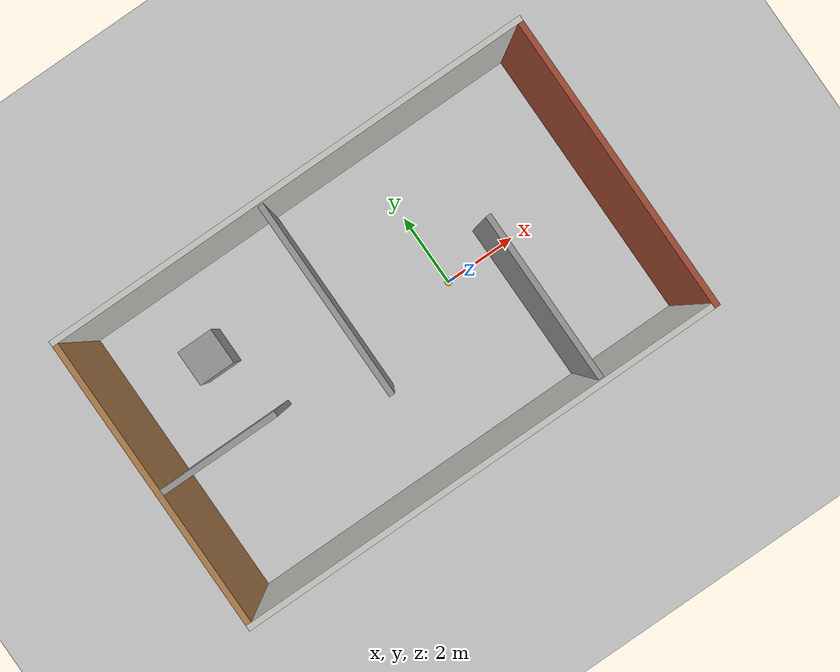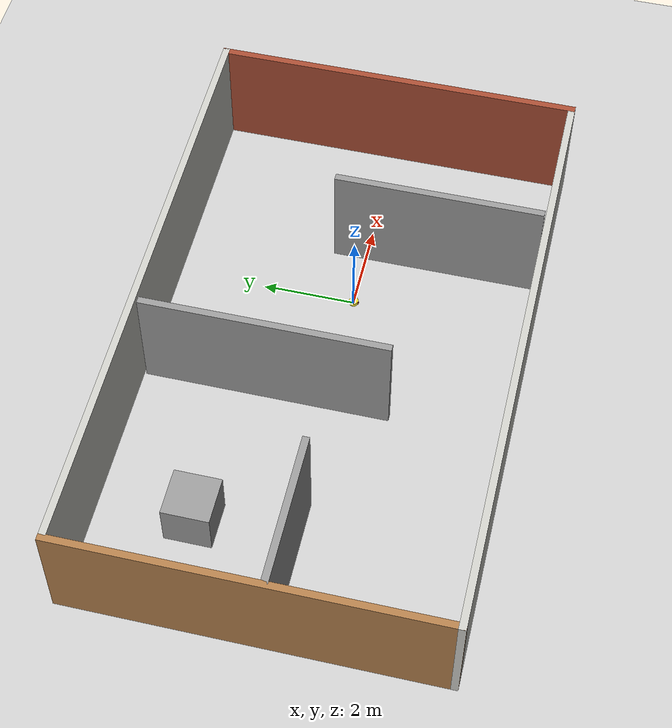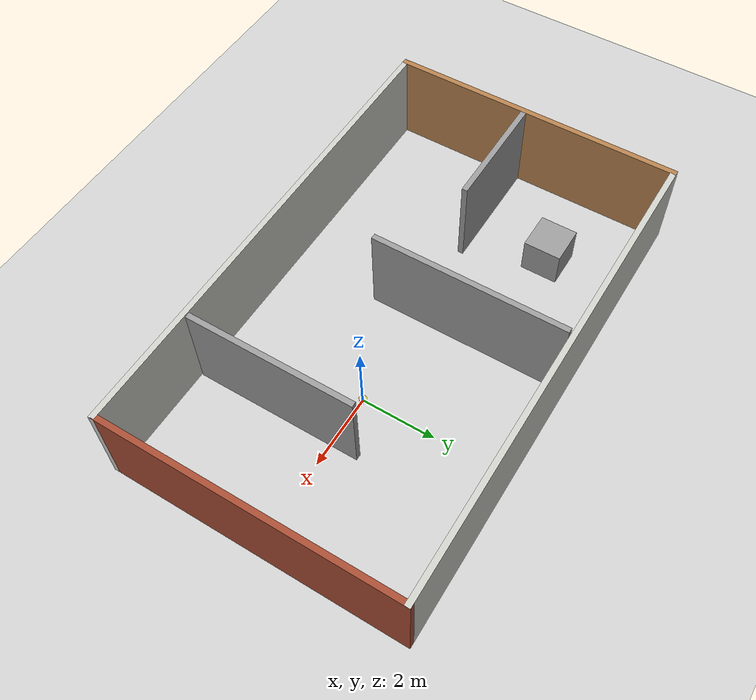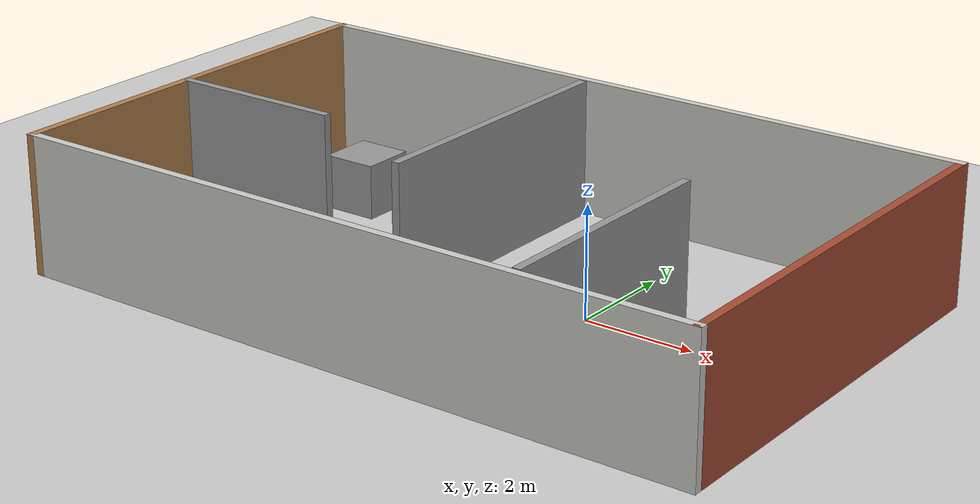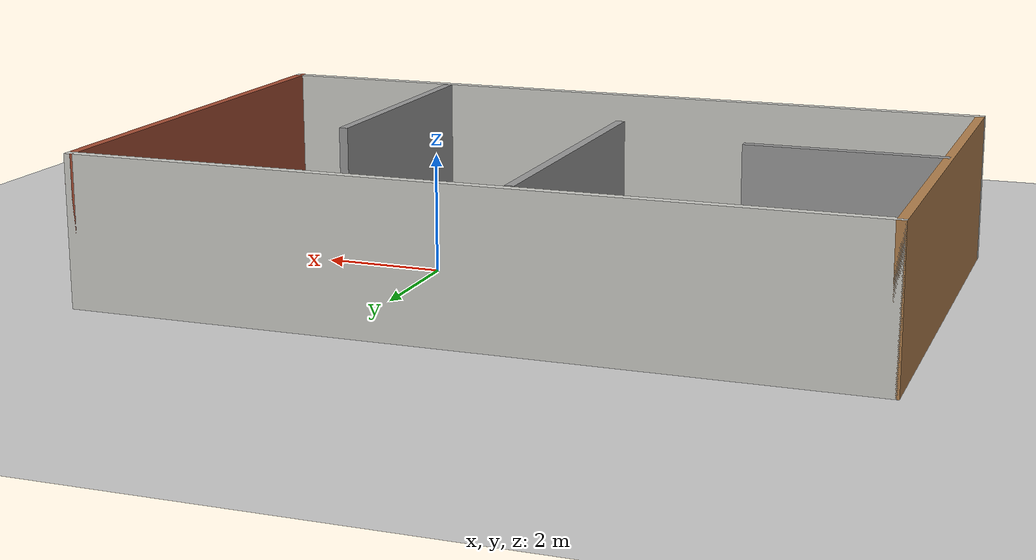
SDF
<sdf version="1.6">
 <world name="default">
  <light name="sun" type="directional">
   <pose>0 0 10 0 -0 0</pose>
   <diffuse>0.8 0.8 0.8 1</diffuse>
   <specular>0.2 0.2 0.2 1</specular>
   <attenuation>
    <range>1000</range>
    <constant>0.9</constant>
    <linear>0.01</linear>
    <quadratic>0.001</quadratic>
   </attenuation>
   <direction>-0.5 0.1 -0.9</direction>
   <spot><inner_angle>0</inner_angle><outer_angle>0</outer_angle><falloff>0</falloff></spot>
  </light>
  <model name="ground_plane">
   <static>1</static>
   <link name="link">
    <collision name="collision">
     <geometry><plane><normal>0 0 1</normal><size>100 100</size></plane></geometry>
     <surface>
      <contact><collide_bitmask>65535</collide_bitmask></contact>
      <friction><ode><mu>100</mu><mu2>50</mu2></ode></friction>
     </surface>
    </collision>
    <visual name="visual">
     <cast_shadows>0</cast_shadows>
     <geometry><plane><normal>0 0 1</normal><size>100 100</size></plane></geometry>
     <material>
      <script><uri>file://media/materials/scripts/gazebo.material</uri><name>Gazebo/Grey</name></script>
     </material>
    </visual>
   </link>
  </model>
  <gravity>0 0 -9.8</gravity>
  <magnetic_field>6e-06 2.3e-05 -4.2e-05</magnetic_field>
  <atmosphere type="adiabatic"/>
  <physics name="default_physics" default="0" type="ode">
   <max_step_size>0.001</max_step_size>
   <real_time_factor>1</real_time_factor>
   <real_time_update_rate>1000</real_time_update_rate>
  </physics>
  <scene><ambient>0.4 0.4 0.4 1</ambient><background>0.7 0.7 0.7 1</background><shadows>1</shadows></scene>
  <spherical_coordinates>
   <surface_model>EARTH_WGS84</surface_model>
   <latitude_deg>0</latitude_deg>
   <longitude_deg>0</longitude_deg>
   <elevation>0</elevation>
   <heading_deg>0</heading_deg>
  </spherical_coordinates>
  <model name="box_house">
   <pose>-1.97643 0.05996 0 0 -0 0</pose>
   <link name="Wall_1">
    <collision name="Wall_1_Collision">
     <geometry><box><size>13 0.15 2.5</size></box></geometry>
     <pose>0 0 1.25 0 -0 0</pose>
    </collision>
    <visual name="Wall_1_Visual">
     <pose>0 0 1.25 0 -0 0</pose>
     <geometry><box><size>13 0.15 2.5</size></box></geometry>
     <material>
      <script><uri>file://media/materials/scripts/gazebo.material</uri><name>Gazebo/CeilingTiled</name></script>
      <ambient>1 1 1 1</ambient>
     </material>
     <meta><layer>0</layer></meta>
    </visual>
    <pose>0 3.925 0 0 -0 0</pose>
   </link>
   <link name="Wall_2">
    <collision name="Wall_2_Collision">
     <geometry><box><size>8 0.15 2.5</size></box></geometry>
     <pose>0 0 1.25 0 -0 0</pose>
    </collision>
    <visual name="Wall_2_Visual">
     <pose>0 0 1.25 0 -0 0</pose>
     <geometry><box><size>8 0.15 2.5</size></box></geometry>
     <material>
      <script><uri>file://media/materials/scripts/gazebo.material</uri><name>Gazebo/Bricks</name></script>
      <ambient>1 1 1 1</ambient>
     </material>
     <meta><layer>0</layer></meta>
    </visual>
    <pose>6.425 -0 0 0 -0 -1.5708</pose>
   </link>
   <link name="Wall_3">
    <collision name="Wall_3_Collision">
     <geometry><box><size>13 0.15 2.5</size></box></geometry>
     <pose>0 0 1.25 0 -0 0</pose>
    </collision>
    <visual name="Wall_3_Visual">
     <pose>0 0 1.25 0 -0 0</pose>
     <geometry><box><size>13 0.15 2.5</size></box></geometry>
     <material>
      <script><uri>file://media/materials/scripts/gazebo.material</uri><name>Gazebo/CeilingTiled</name></script>
      <ambient>1 1 1 1</ambient>
     </material>
     <meta><layer>0</layer></meta>
    </visual>
    <pose>0 -3.925 0 0 -0 3.14159</pose>
   </link>
   <link name="Wall_4">
    <collision name="Wall_4_Collision">
     <geometry><box><size>8 0.15 2.5</size></box></geometry>
     <pose>0 0 1.25 0 -0 0</pose>
    </collision>
    <visual name="Wall_4_Visual">
     <pose>0 0 1.25 0 -0 0</pose>
     <geometry><box><size>8 0.15 2.5</size></box></geometry>
     <material>
      <script><uri>file://media/materials/scripts/gazebo.material</uri><name>Gazebo/Wood</name></script>
      <ambient>1 1 1 1</ambient>
     </material>
     <meta><layer>0</layer></meta>
    </visual>
    <pose>-6.425 -0 0 0 -0 1.5708</pose>
   </link>
   <static>1</static>
  </model>
  <audio><device>default</device></audio>
  <model name="mycar">
   <link name="base_footprint">
    <inertial>
     <pose>0.00127 0 0.093611 0 -0 0</pose>
     <mass>0.63</mass>
     <inertia>
      <ixx>0.00557395</ixx>
      <ixy>0</ixy>
      <ixz>-1.11111e-05</ixz>
      <iyy>0.00563694</iyy>
      <iyz>0</iyz>
      <izz>0.00261003</izz>
     </inertia>
    </inertial>
    <collision name="base_footprint_fixed_joint_lump__base_link_collision">
     <pose>0 0 0.055 0 -0 0</pose>
     <geometry><cylinder><length>0.08</length><radius>0.1</radius></cylinder></geometry>
    </collision>
    <collision name="base_footprint_fixed_joint_lump__camera_collision_1">
     <pose>0.08 0 0.1075 0 -0 0</pose>
     <geometry><box><size>0.01 0.025 0.025</size></box></geometry>
    </collision>
    <collision name="base_footprint_fixed_joint_lump__support_collision_2">
     <pose>0 0 0.17 0 -0 0</pose>
     <geometry><cylinder><length>0.15</length><radius>0.01</radius></cylinder></geometry>
    </collision>
    <collision name="base_footprint_fixed_joint_lump__laser_collision_3">
     <pose>0 0 0.27 0 -0 0</pose>
     <geometry><cylinder><length>0.05</length><radius>0.03</radius></cylinder></geometry>
    </collision>
    <visual name="base_footprint_visual"><geometry><sphere><radius>0.001</radius></sphere></geometry></visual>
    <visual name="base_footprint_fixed_joint_lump__base_link_visual_1">
     <pose>0 0 0.055 0 -0 0</pose>
     <geometry><cylinder><length>0.08</length><radius>0.1</radius></cylinder></geometry>
     <material>
      <script><name>Gazebo/Yellow</name><uri>file://media/materials/scripts/gazebo.material</uri></script>
     </material>
    </visual>
    <visual name="base_footprint_fixed_joint_lump__camera_visual_2">
     <pose>0.08 0 0.1075 0 -0 0</pose>
     <geometry><box><size>0.01 0.025 0.025</size></box></geometry>
     <material>
      <script><name>Gazebo/Blue</name><uri>file://media/materials/scripts/gazebo.material</uri></script>
     </material>
    </visual>
    <visual name="base_footprint_fixed_joint_lump__support_visual_3">
     <pose>0 0 0.17 0 -0 0</pose>
     <geometry><cylinder><length>0.15</length><radius>0.01</radius></cylinder></geometry>
     <material>
      <script><name>Gazebo/White</name><uri>file://media/materials/scripts/gazebo.material</uri></script>
     </material>
    </visual>
    <visual name="base_footprint_fixed_joint_lump__laser_visual_4">
     <pose>0 0 0.27 0 -0 0</pose>
     <geometry><cylinder><length>0.05</length><radius>0.03</radius></cylinder></geometry>
     <material>
      <script><name>Gazebo/Black</name><uri>file://media/materials/scripts/gazebo.material</uri></script>
     </material>
    </visual>
    <sensor name="rplidar" type="ray">
     <visualize>1</visualize>
     <update_rate>5.5</update_rate>
     <ray>
      <scan>
       <horizontal>
        <samples>360</samples>
        <resolution>1</resolution>
        <min_angle>-3</min_angle>
        <max_angle>3</max_angle>
       </horizontal>
       <vertical><samples>1</samples><min_angle>0</min_angle><max_angle>0</max_angle></vertical>
      </scan>
      <range><min>0.1</min><max>30</max><resolution>0.01</resolution></range>
      <noise><type>gaussian</type><mean>0</mean><stddev>0.01</stddev></noise>
     </ray>
     <plugin name="gazebo_rplidar" filename="libgazebo_ros_laser.so">
      <topicName>/scan</topicName>
      <frameName>laser</frameName>
      <robotNamespace>/</robotNamespace>
     </plugin>
     <pose>0 0 0.27 0 -0 0</pose>
    </sensor>
   </link>
   <link name="back_wheel">
    <pose>-0.0925 0 0.0075 0 -0 0</pose>
    <inertial>
     <mass>0.03</mass>
     <inertia>
      <ixx>6.75e-07</ixx>
      <ixy>0</ixy>
      <ixz>0</ixz>
      <iyy>6.75e-07</iyy>
      <iyz>0</iyz>
      <izz>6.75e-07</izz>
     </inertia>
    </inertial>
    <collision name="back_wheel_collision">
     <geometry><sphere><radius>0.0075</radius></sphere></geometry>
    </collision>
    <visual name="back_wheel_visual">
     <geometry><sphere><radius>0.0075</radius></sphere></geometry>
     <material>
      <script><name>Gazebo/Red</name><uri>file://media/materials/scripts/gazebo.material</uri></script>
     </material>
    </visual>
   </link>
   <joint name="back_wheel2base_link" type="revolute">
    <child>back_wheel</child>
    <parent>base_footprint</parent>
    <axis>
     <xyz>1 1 1</xyz>
     <limit><lower>-1e+16</lower><upper>1e+16</upper></limit>
     <dynamics><spring_reference>0</spring_reference><spring_stiffness>0</spring_stiffness></dynamics>
     <use_parent_model_frame>1</use_parent_model_frame>
    </axis>
   </joint>
   <link name="front_wheel">
    <pose>0.0925 0 0.0075 0 -0 0</pose>
    <inertial>
     <mass>0.03</mass>
     <inertia>
      <ixx>6.75e-07</ixx>
      <ixy>0</ixy>
      <ixz>0</ixz>
      <iyy>6.75e-07</iyy>
      <iyz>0</iyz>
      <izz>6.75e-07</izz>
     </inertia>
    </inertial>
    <collision name="front_wheel_collision">
     <geometry><sphere><radius>0.0075</radius></sphere></geometry>
    </collision>
    <visual name="front_wheel_visual">
     <geometry><sphere><radius>0.0075</radius></sphere></geometry>
     <material>
      <script><name>Gazebo/Red</name><uri>file://media/materials/scripts/gazebo.material</uri></script>
     </material>
    </visual>
   </link>
   <joint name="front_wheel2base_link" type="revolute">
    <child>front_wheel</child>
    <parent>base_footprint</parent>
    <axis>
     <xyz>1 1 1</xyz>
     <limit><lower>-1e+16</lower><upper>1e+16</upper></limit>
     <dynamics><spring_reference>0</spring_reference><spring_stiffness>0</spring_stiffness></dynamics>
     <use_parent_model_frame>1</use_parent_model_frame>
    </axis>
   </joint>
   <link name="left_wheel">
    <pose>0 0.1 0.0325 0 -0 0</pose>
    <inertial>
     <mass>0.05</mass>
     <inertia>
      <ixx>1.41406e-05</ixx>
      <ixy>0</ixy>
      <ixz>0</ixz>
      <iyy>1.41406e-05</iyy>
      <iyz>0</iyz>
      <izz>2.64063e-05</izz>
     </inertia>
    </inertial>
    <collision name="left_wheel_collision">
     <pose>0 0 0 1.5708 -0 0</pose>
     <geometry><cylinder><length>0.015</length><radius>0.0325</radius></cylinder></geometry>
    </collision>
    <visual name="left_wheel_visual">
     <pose>0 0 0 1.5708 -0 0</pose>
     <geometry><cylinder><length>0.015</length><radius>0.0325</radius></cylinder></geometry>
     <material>
      <script><name>Gazebo/Red</name><uri>file://media/materials/scripts/gazebo.material</uri></script>
     </material>
    </visual>
   </link>
   <joint name="left_wheel2base_link" type="revolute">
    <child>left_wheel</child>
    <parent>base_footprint</parent>
    <axis>
     <xyz>0 1 0</xyz>
     <limit><lower>-1e+16</lower><upper>1e+16</upper></limit>
     <dynamics><spring_reference>0</spring_reference><spring_stiffness>0</spring_stiffness></dynamics>
     <use_parent_model_frame>1</use_parent_model_frame>
    </axis>
   </joint>
   <link name="right_wheel">
    <pose>0 -0.1 0.0325 0 -0 0</pose>
    <inertial>
     <mass>0.05</mass>
     <inertia>
      <ixx>1.41406e-05</ixx>
      <ixy>0</ixy>
      <ixz>0</ixz>
      <iyy>1.41406e-05</iyy>
      <iyz>0</iyz>
      <izz>2.64063e-05</izz>
     </inertia>
    </inertial>
    <collision name="right_wheel_collision">
     <pose>0 0 0 1.5708 -0 0</pose>
     <geometry><cylinder><length>0.015</length><radius>0.0325</radius></cylinder></geometry>
    </collision>
    <visual name="right_wheel_visual">
     <pose>0 0 0 1.5708 -0 0</pose>
     <geometry><cylinder><length>0.015</length><radius>0.0325</radius></cylinder></geometry>
     <material>
      <script><name>Gazebo/Red</name><uri>file://media/materials/scripts/gazebo.material</uri></script>
     </material>
    </visual>
   </link>
   <joint name="right_wheel2base_link" type="revolute">
    <child>right_wheel</child>
    <parent>base_footprint</parent>
    <axis>
     <xyz>0 1 0</xyz>
     <limit><lower>-1e+16</lower><upper>1e+16</upper></limit>
     <dynamics><spring_reference>0</spring_reference><spring_stiffness>0</spring_stiffness></dynamics>
     <use_parent_model_frame>1</use_parent_model_frame>
    </axis>
   </joint>
   <static>0</static>
   <plugin name="differential_drive_controller" filename="libgazebo_ros_diff_drive.so">
    <rosDebugLevel>Debug</rosDebugLevel>
    <publishWheelTF>1</publishWheelTF>
    <robotNamespace>/</robotNamespace>
    <publishTf>1</publishTf>
    <publishWheelJointState>1</publishWheelJointState>
    <alwaysOn>1</alwaysOn>
    <updateRate>100.0</updateRate>
    <legacyMode>1</legacyMode>
    <leftJoint>left_wheel2base_link</leftJoint>
    <rightJoint>right_wheel2base_link</rightJoint>
    <wheelSeparation>0.2</wheelSeparation>
    <wheelDiameter>0.065</wheelDiameter>
    <broadcastTF>1</broadcastTF>
    <wheelTorque>30</wheelTorque>
    <wheelAcceleration>1.8</wheelAcceleration>
    <commandTopic>cmd_vel</commandTopic>
    <odometryFrame>odom</odometryFrame>
    <odometryTopic>odom</odometryTopic>
    <robotBaseFrame>base_footprint</robotBaseFrame>
   </plugin>
   <pose>0.001033 -0.000987 0 0 0 -0.01109</pose>
  </model>
  <model name="Untitled">
   <pose>-3.49924 0.050675 0 0 -0 0</pose>
   <link name="Wall_0">
    <collision name="Wall_0_Collision">
     <geometry><box><size>4.5 0.15 2.5</size></box></geometry>
     <pose>0 0 1.25 0 -0 0</pose>
    </collision>
    <visual name="Wall_0_Visual">
     <pose>0 0 1.25 0 -0 0</pose>
     <geometry><box><size>4.5 0.15 2.5</size></box></geometry>
     <material>
      <script><uri>file://media/materials/scripts/gazebo.material</uri><name>Gazebo/Grey</name></script>
      <ambient>1 1 1 1</ambient>
     </material>
     <meta><layer>0</layer></meta>
    </visual>
    <pose>4.84888 -1.56496 0 0 -0 1.5708</pose>
   </link>
   <link name="Wall_2">
    <collision name="Wall_2_Collision">
     <geometry><box><size>5.25 0.15 2.5</size></box></geometry>
     <pose>0 0 1.25 0 -0 0</pose>
    </collision>
    <visual name="Wall_2_Visual">
     <pose>0 0 1.25 0 -0 0</pose>
     <geometry><box><size>5.25 0.15 2.5</size></box></geometry>
     <material>
      <script><uri>file://media/materials/scripts/gazebo.material</uri><name>Gazebo/Grey</name></script>
      <ambient>1 1 1 1</ambient>
     </material>
     <meta><layer>0</layer></meta>
    </visual>
    <pose>0.732374 1.18996 0 0 -0 1.5708</pose>
   </link>
   <link name="Wall_4">
    <collision name="Wall_4_Collision">
     <geometry><box><size>3.25 0.15 2.5</size></box></geometry>
     <pose>0 0 1.25 0 -0 0</pose>
    </collision>
    <visual name="Wall_4_Visual">
     <pose>0 0 1.25 0 -0 0</pose>
     <geometry><box><size>3.25 0.15 2.5</size></box></geometry>
     <material>
      <script><uri>file://media/materials/scripts/gazebo.material</uri><name>Gazebo/Grey</name></script>
      <ambient>1 1 1 1</ambient>
     </material>
     <meta><layer>0</layer></meta>
    </visual>
    <pose>-3.29888 -0.274688 0 0 -0 3.14159</pose>
   </link>
   <static>1</static>
  </model>
  <model name="unit_box">
   <pose>-6.09174 1.88603 0.5 0 -0 0</pose>
   <link name="link">
    <inertial>
     <mass>1</mass>
     <inertia>
      <ixx>0.166667</ixx>
      <ixy>0</ixy>
      <ixz>0</ixz>
      <iyy>0.166667</iyy>
      <iyz>0</iyz>
      <izz>0.166667</izz>
     </inertia>
    </inertial>
    <collision name="collision"><geometry><box><size>1 1 1</size></box></geometry></collision>
    <visual name="visual">
     <geometry><box><size>1 1 1</size></box></geometry>
     <material>
      <script><name>Gazebo/Grey</name><uri>file://media/materials/scripts/gazebo.material</uri></script>
     </material>
    </visual>
   </link>
  </model>
 </world>
</sdf>
